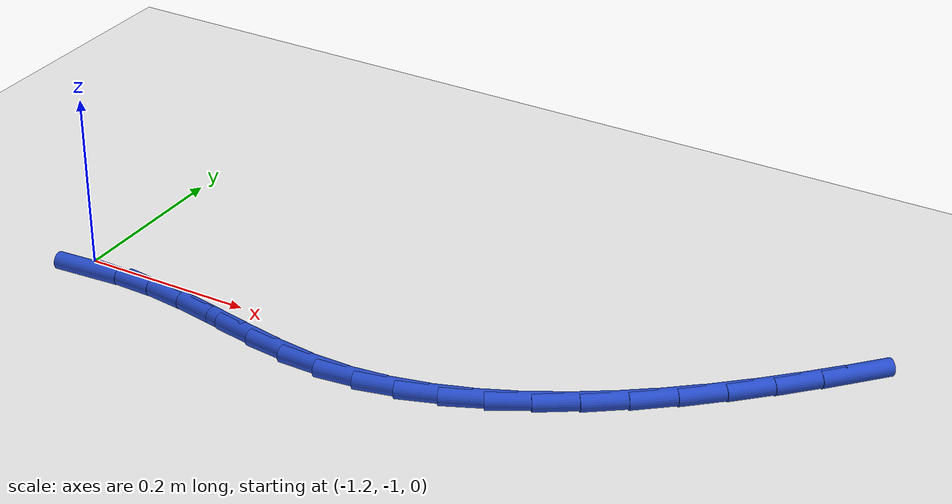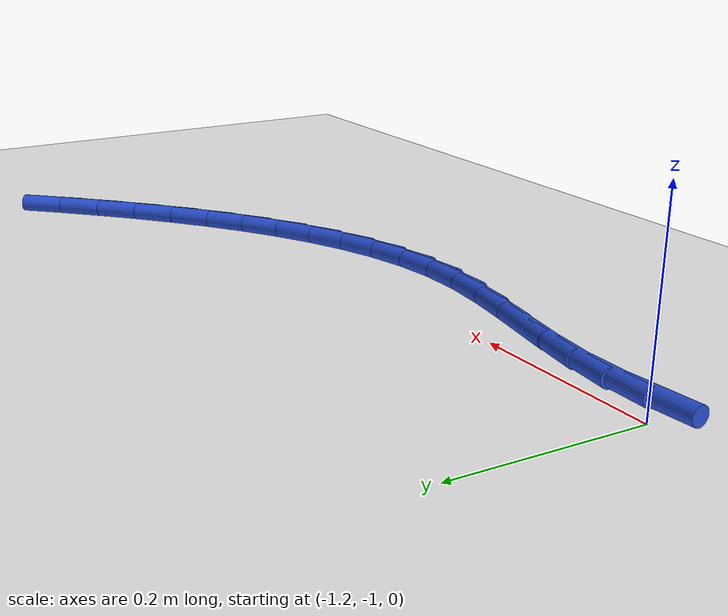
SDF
<sdf version="1.6">
 <world name="default">
  <model name="ground_plane">
   <static>1</static>
   <link name="link">
    <collision name="collision">
     <geometry><plane><normal>0 0 1</normal><size>100 100</size></plane></geometry>
     <surface><friction><ode><mu>100</mu><mu2>50</mu2></ode></friction></surface>
    </collision>
    <visual name="visual">
     <cast_shadows>0</cast_shadows>
     <geometry><plane><normal>0 0 1</normal><size>100 100</size></plane></geometry>
     <material>
      <script><uri>file://media/materials/scripts/gazebo.material</uri><name>Gazebo/WhiteGlow</name></script>
     </material>
    </visual>
   </link>
  </model>
  <model name="line">
   <link name="link_122">
    <pose>-1.184692934234549 -1.029074022155751 0.01 0 1.57 0.06904815898811317</pose>
    <collision name="collision">
     <geometry><cylinder><radius>0.01</radius><length>0.08</length></cylinder></geometry>
    </collision>
    <visual name="visual">
     <material>
      <script><name>Gazebo/Blue</name><uri>file://media/materials/scripts/gazebo.material</uri></script>
     </material>
     <geometry><cylinder><radius>0.01</radius><length>0.08</length></cylinder></geometry>
    </visual>
   </link>
   <link name="link_123">
    <pose>-1.1396172404248195 -1.025956672765924 0.01 0 1.57 -0.028369986479351624</pose>
    <collision name="collision">
     <geometry><cylinder><radius>0.01</radius><length>0.08</length></cylinder></geometry>
    </collision>
    <visual name="visual">
     <material>
      <script><name>Gazebo/Blue</name><uri>file://media/materials/scripts/gazebo.material</uri></script>
     </material>
     <geometry><cylinder><radius>0.01</radius><length>0.08</length></cylinder></geometry>
    </visual>
   </link>
   <link name="link_124">
    <pose>-1.0940566698154017 -1.0272495724227906 0.01 0 1.57 -0.12361960008797047</pose>
    <collision name="collision">
     <geometry><cylinder><radius>0.01</radius><length>0.08</length></cylinder></geometry>
    </collision>
    <visual name="visual">
     <material>
      <script><name>Gazebo/Blue</name><uri>file://media/materials/scripts/gazebo.material</uri></script>
     </material>
     <geometry><cylinder><radius>0.01</radius><length>0.08</length></cylinder></geometry>
    </visual>
   </link>
   <link name="link_125">
    <pose>-1.047847541694813 -1.0329912036993996 0.01 0 1.57 -0.18016193118482465</pose>
    <collision name="collision">
     <geometry><cylinder><radius>0.01</radius><length>0.08</length></cylinder></geometry>
    </collision>
    <visual name="visual">
     <material>
      <script><name>Gazebo/Blue</name><uri>file://media/materials/scripts/gazebo.material</uri></script>
     </material>
     <geometry><cylinder><radius>0.01</radius><length>0.08</length></cylinder></geometry>
    </visual>
   </link>
   <link name="link_126">
    <pose>-1.0012113164456802 -1.0414853777974085 0.01 0 1.57 -0.19621269740891664</pose>
    <collision name="collision">
     <geometry><cylinder><radius>0.01</radius><length>0.08</length></cylinder></geometry>
    </collision>
    <visual name="visual">
     <material>
      <script><name>Gazebo/Blue</name><uri>file://media/materials/scripts/gazebo.material</uri></script>
     </material>
     <geometry><cylinder><radius>0.01</radius><length>0.08</length></cylinder></geometry>
    </visual>
   </link>
   <link name="link_127">
    <pose>-0.9544251463648621 -1.0507850701320351 0.01 0 1.57 -0.17309734104516106</pose>
    <collision name="collision">
     <geometry><cylinder><radius>0.01</radius><length>0.08</length></cylinder></geometry>
    </collision>
    <visual name="visual">
     <material>
      <script><name>Gazebo/Blue</name><uri>file://media/materials/scripts/gazebo.material</uri></script>
     </material>
     <geometry><cylinder><radius>0.01</radius><length>0.08</length></cylinder></geometry>
    </visual>
   </link>
   <link name="link_128">
    <pose>-0.9077661837492138 -1.0589432561184964 0.01 0 1.57 -0.10916750858214504</pose>
    <collision name="collision">
     <geometry><cylinder><radius>0.01</radius><length>0.08</length></cylinder></geometry>
    </collision>
    <visual name="visual">
     <material>
      <script><name>Gazebo/Blue</name><uri>file://media/materials/scripts/gazebo.material</uri></script>
     </material>
     <geometry><cylinder><radius>0.01</radius><length>0.08</length></cylinder></geometry>
    </visual>
   </link>
   <link name="link_129">
    <pose>-0.8615115808955935 -1.0640129111720107 0.01 0 1.57 -0.0028360003192431224</pose>
    <collision name="collision">
     <geometry><cylinder><radius>0.01</radius><length>0.08</length></cylinder></geometry>
    </collision>
    <visual name="visual">
     <material>
      <script><name>Gazebo/Blue</name><uri>file://media/materials/scripts/gazebo.material</uri></script>
     </material>
     <geometry><cylinder><radius>0.01</radius><length>0.08</length></cylinder></geometry>
    </visual>
   </link>
   <link name="link_130">
    <pose>-0.8159283660335959 -1.0641421855304918 0.01 0 1.57 0.11899752996683975</pose>
    <collision name="collision">
     <geometry><cylinder><radius>0.01</radius><length>0.08</length></cylinder></geometry>
    </collision>
    <visual name="visual">
     <material>
      <script><name>Gazebo/Blue</name><uri>file://media/materials/scripts/gazebo.material</uri></script>
     </material>
     <geometry><cylinder><radius>0.01</radius><length>0.08</length></cylinder></geometry>
    </visual>
   </link>
   <link name="link_131">
    <pose>-0.7711443805248095 -1.05878770409343 0.01 0 1.57 0.23297175436412454</pose>
    <collision name="collision">
     <geometry><cylinder><radius>0.01</radius><length>0.08</length></cylinder></geometry>
    </collision>
    <visual name="visual">
     <material>
      <script><name>Gazebo/Blue</name><uri>file://media/materials/scripts/gazebo.material</uri></script>
     </material>
     <geometry><cylinder><radius>0.01</radius><length>0.08</length></cylinder></geometry>
    </visual>
   </link>
   <link name="link_132">
    <pose>-0.7271862807858008 -1.0483573161006188 0.01 0 1.57 0.3364528969940407</pose>
    <collision name="collision">
     <geometry><cylinder><radius>0.01</radius><length>0.08</length></cylinder></geometry>
    </collision>
    <visual name="visual">
     <material>
      <script><name>Gazebo/Blue</name><uri>file://media/materials/scripts/gazebo.material</uri></script>
     </material>
     <geometry><cylinder><radius>0.01</radius><length>0.08</length></cylinder></geometry>
    </visual>
   </link>
   <link name="link_133">
    <pose>-0.6840784426281308 -1.0332803104140098 0.01 0 1.57 0.4285376609108989</pose>
    <collision name="collision">
     <geometry><cylinder><radius>0.01</radius><length>0.08</length></cylinder></geometry>
    </collision>
    <visual name="visual">
     <material>
      <script><name>Gazebo/Blue</name><uri>file://media/materials/scripts/gazebo.material</uri></script>
     </material>
     <geometry><cylinder><radius>0.01</radius><length>0.08</length></cylinder></geometry>
    </visual>
   </link>
   <link name="link_134">
    <pose>-0.641845241863361 -1.0139859758955538 0.01 0 1.57 0.509294622397305</pose>
    <collision name="collision">
     <geometry><cylinder><radius>0.01</radius><length>0.08</length></cylinder></geometry>
    </collision>
    <visual name="visual">
     <material>
      <script><name>Gazebo/Blue</name><uri>file://media/materials/scripts/gazebo.material</uri></script>
     </material>
     <geometry><cylinder><radius>0.01</radius><length>0.08</length></cylinder></geometry>
    </visual>
   </link>
   <link name="link_135">
    <pose>-0.6005110543030538 -0.9909036014072021 0.01 0 1.57 0.5793980240286287</pose>
    <collision name="collision">
     <geometry><cylinder><radius>0.01</radius><length>0.08</length></cylinder></geometry>
    </collision>
    <visual name="visual">
     <material>
      <script><name>Gazebo/Blue</name><uri>file://media/materials/scripts/gazebo.material</uri></script>
     </material>
     <geometry><cylinder><radius>0.01</radius><length>0.08</length></cylinder></geometry>
    </visual>
   </link>
   <link name="link_136">
    <pose>-0.5601002557587702 -0.964462475810905 0.01 0 1.57 0.6398146097615687</pose>
    <collision name="collision">
     <geometry><cylinder><radius>0.01</radius><length>0.08</length></cylinder></geometry>
    </collision>
    <visual name="visual">
     <material>
      <script><name>Gazebo/Blue</name><uri>file://media/materials/scripts/gazebo.material</uri></script>
     </material>
     <geometry><cylinder><radius>0.01</radius><length>0.08</length></cylinder></geometry>
    </visual>
   </link>
   <link name="link_137">
    <pose>-0.5206372220420733 -0.9350918879686145 0.01 0 1.57 0.6915871191601909</pose>
    <collision name="collision">
     <geometry><cylinder><radius>0.01</radius><length>0.08</length></cylinder></geometry>
    </collision>
    <visual name="visual">
     <material>
      <script><name>Gazebo/Blue</name><uri>file://media/materials/scripts/gazebo.material</uri></script>
     </material>
     <geometry><cylinder><radius>0.01</radius><length>0.08</length></cylinder></geometry>
    </visual>
   </link>
   <link name="link_138">
    <pose>-0.4821463289645245 -0.9032211267422812 0.01 0 1.57 0.7357060610081774</pose>
    <collision name="collision">
     <geometry><cylinder><radius>0.01</radius><length>0.08</length></cylinder></geometry>
    </collision>
    <visual name="visual">
     <material>
      <script><name>Gazebo/Blue</name><uri>file://media/materials/scripts/gazebo.material</uri></script>
     </material>
     <geometry><cylinder><radius>0.01</radius><length>0.08</length></cylinder></geometry>
    </visual>
   </link>
   <link name="link_139">
    <pose>-0.4446519523376855 -0.8692794809938562 0.01 0 1.57 0.7730440402386611</pose>
    <collision name="collision">
     <geometry><cylinder><radius>0.01</radius><length>0.08</length></cylinder></geometry>
    </collision>
    <visual name="visual">
     <material>
      <script><name>Gazebo/Blue</name><uri>file://media/materials/scripts/gazebo.material</uri></script>
     </material>
     <geometry><cylinder><radius>0.01</radius><length>0.08</length></cylinder></geometry>
    </visual>
   </link>
   <link name="link_140">
    <pose>-0.4081784679731183 -0.8336962395852903 0.01 0 1.57 0.804327785837854</pose>
    <collision name="collision">
     <geometry><cylinder><radius>0.01</radius><length>0.08</length></cylinder></geometry>
    </collision>
    <visual name="visual">
     <material>
      <script><name>Gazebo/Blue</name><uri>file://media/materials/scripts/gazebo.material</uri></script>
     </material>
     <geometry><cylinder><radius>0.01</radius><length>0.08</length></cylinder></geometry>
    </visual>
   </link>
   <link name="link_141">
    <pose>-0.37275025168238407 -0.7969006913785343 0.01 0 1.57 0.830129520436167</pose>
    <collision name="collision">
     <geometry><cylinder><radius>0.01</radius><length>0.08</length></cylinder></geometry>
    </collision>
    <visual name="visual">
     <material>
      <script><name>Gazebo/Blue</name><uri>file://media/materials/scripts/gazebo.material</uri></script>
     </material>
     <geometry><cylinder><radius>0.01</radius><length>0.08</length></cylinder></geometry>
    </visual>
   </link>
  </model>
 </world>
</sdf>
